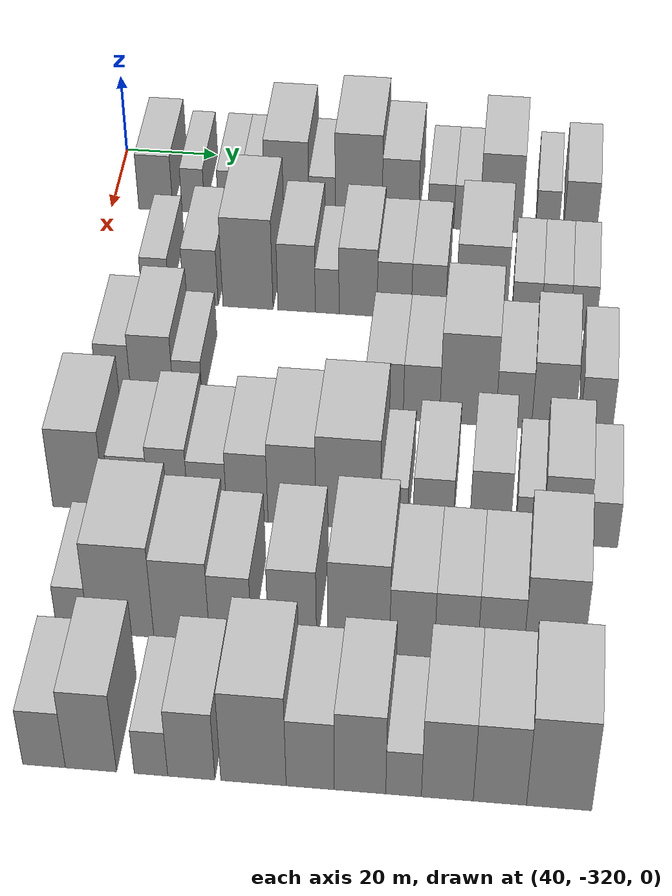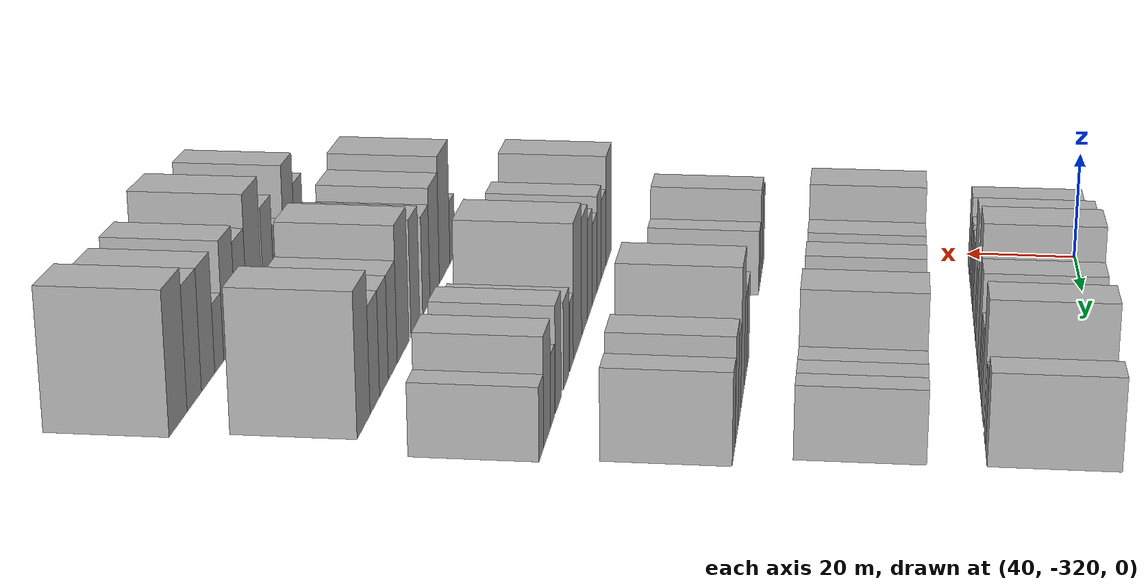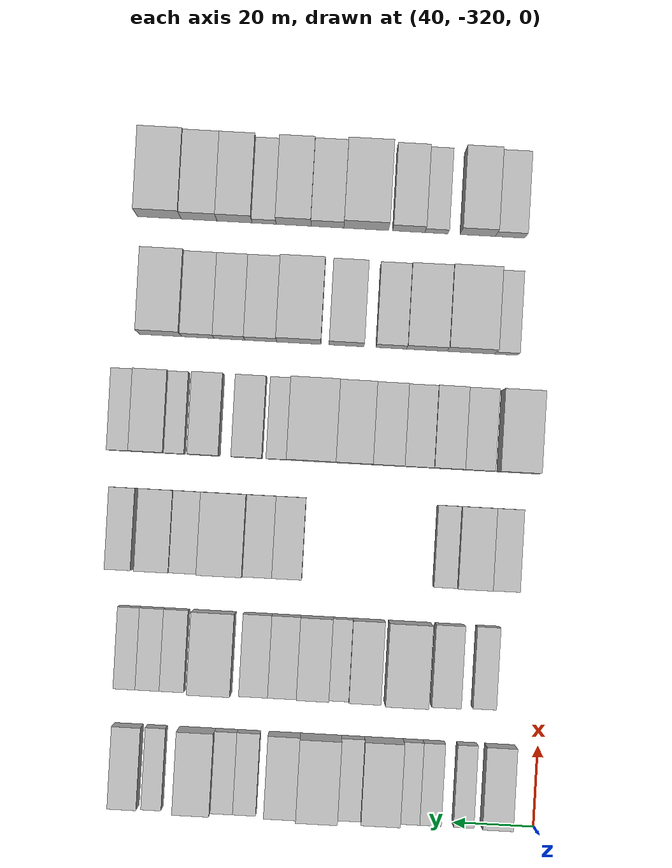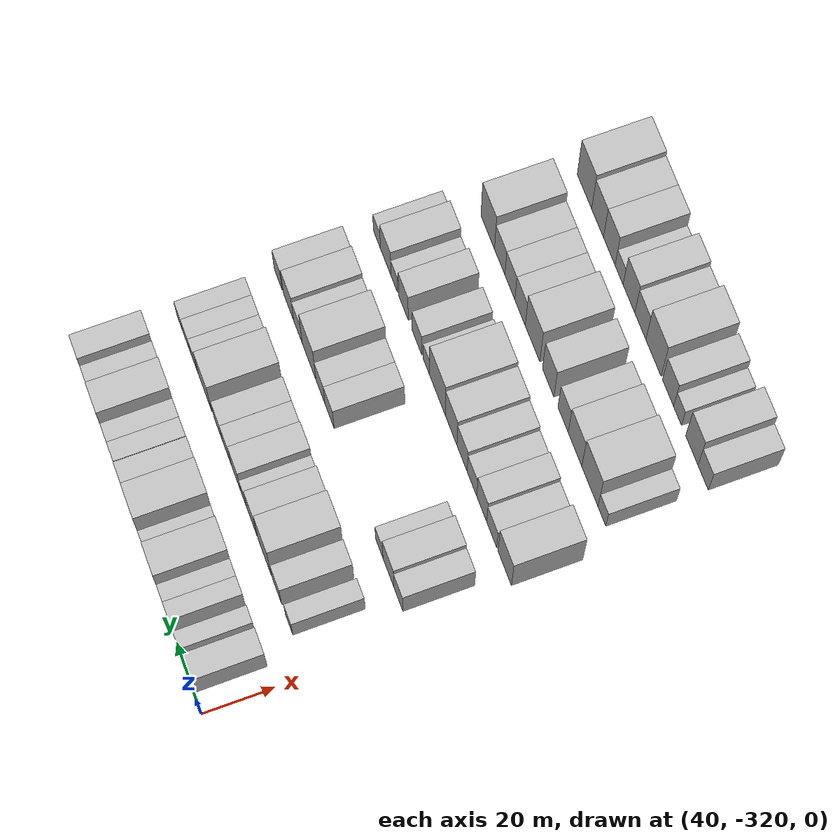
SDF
<sdf version="1.6">
 <world name="default">
  <model name="building_25">
   <static>1</static>
   <pose>50.0000 -310.3500 0 0.000000 0.000000 0.000000</pose>
   <link name="link">
    <pose>0 0 7.50 0 0 0</pose>
    <collision name="collision"><geometry><box><size>20.0000 7.4477 15.0000</size></box></geometry></collision>
    <visual name="visual">
     <cast_shadows>0</cast_shadows>
     <geometry><box><size>20.0000 7.4477 15.0000</size></box></geometry>
     <material>
      <script>
       <uri>model://HANNAS_wall/materials/scripts</uri>
       <uri>model://HANNAS_wall/materials/textures</uri>
       <name>vrc/HANNAS_wall</name>
      </script>
     </material>
    </visual>
   </link>
  </model>
  <model name="building_26">
   <static>1</static>
   <pose>50.0000 -302.1518 0 0.000000 0.000000 0.000000</pose>
   <link name="link">
    <pose>0 0 6.00 0 0 0</pose>
    <collision name="collision"><geometry><box><size>20.0000 4.9486 12.0000</size></box></geometry></collision>
    <visual name="visual">
     <cast_shadows>0</cast_shadows>
     <geometry><box><size>20.0000 4.9486 12.0000</size></box></geometry>
     <material>
      <script>
       <uri>model://HANNAS_wall/materials/scripts</uri>
       <uri>model://HANNAS_wall/materials/textures</uri>
       <name>vrc/HANNAS_wall</name>
      </script>
     </material>
    </visual>
   </link>
  </model>
  <model name="building_27">
   <static>1</static>
   <pose>50.0000 -294.0552 0 0.000000 0.000000 0.000000</pose>
   <link name="link">
    <pose>0 0 6.00 0 0 0</pose>
    <collision name="collision"><geometry><box><size>20.0000 5.2446 12.0000</size></box></geometry></collision>
    <visual name="visual">
     <cast_shadows>0</cast_shadows>
     <geometry><box><size>20.0000 5.2446 12.0000</size></box></geometry>
     <material>
      <script>
       <uri>model://HANNAS_wall/materials/scripts</uri>
       <uri>model://HANNAS_wall/materials/textures</uri>
       <name>vrc/HANNAS_wall</name>
      </script>
     </material>
    </visual>
   </link>
  </model>
  <model name="building_28">
   <static>1</static>
   <pose>50.0000 -288.9779 0 0.000000 0.000000 0.000000</pose>
   <link name="link">
    <pose>0 0 6.00 0 0 0</pose>
    <collision name="collision"><geometry><box><size>20.0000 4.9102 12.0000</size></box></geometry></collision>
    <visual name="visual">
     <cast_shadows>0</cast_shadows>
     <geometry><box><size>20.0000 4.9102 12.0000</size></box></geometry>
     <material>
      <script>
       <uri>model://HANNAS_wall/materials/scripts</uri>
       <uri>model://HANNAS_wall/materials/textures</uri>
       <name>vrc/HANNAS_wall</name>
      </script>
     </material>
    </visual>
   </link>
  </model>
  <model name="building_29">
   <static>1</static>
   <pose>50.0000 -281.7681 0 0.000000 0.000000 0.000000</pose>
   <link name="link">
    <pose>0 0 10.50 0 0 0</pose>
    <collision name="collision"><geometry><box><size>20.0000 9.5093 21.0000</size></box></geometry></collision>
    <visual name="visual">
     <cast_shadows>0</cast_shadows>
     <geometry><box><size>20.0000 9.5093 21.0000</size></box></geometry>
     <material>
      <script>
       <uri>model://HANNAS_wall/materials/scripts</uri>
       <uri>model://HANNAS_wall/materials/textures</uri>
       <name>vrc/HANNAS_wall</name>
      </script>
     </material>
    </visual>
   </link>
  </model>
  <model name="building_30">
   <static>1</static>
   <pose>50.0000 -274.1757 0 0.000000 0.000000 0.000000</pose>
   <link name="link">
    <pose>0 0 6.00 0 0 0</pose>
    <collision name="collision"><geometry><box><size>20.0000 5.6756 12.0000</size></box></geometry></collision>
    <visual name="visual">
     <cast_shadows>0</cast_shadows>
     <geometry><box><size>20.0000 5.6756 12.0000</size></box></geometry>
     <material>
      <script>
       <uri>model://HANNAS_wall/materials/scripts</uri>
       <uri>model://HANNAS_wall/materials/textures</uri>
       <name>vrc/HANNAS_wall</name>
      </script>
     </material>
    </visual>
   </link>
  </model>
  <model name="building_31">
   <static>1</static>
   <pose>50.0000 -266.2947 0 0.000000 0.000000 0.000000</pose>
   <link name="link">
    <pose>0 0 12.00 0 0 0</pose>
    <collision name="collision"><geometry><box><size>20.0000 10.0864 24.0000</size></box></geometry></collision>
    <visual name="visual">
     <cast_shadows>0</cast_shadows>
     <geometry><box><size>20.0000 10.0864 24.0000</size></box></geometry>
     <material>
      <script>
       <uri>model://HANNAS_wall/materials/scripts</uri>
       <uri>model://HANNAS_wall/materials/textures</uri>
       <name>vrc/HANNAS_wall</name>
      </script>
     </material>
    </visual>
   </link>
  </model>
  <model name="building_32">
   <static>1</static>
   <pose>50.0000 -257.3441 0 0.000000 0.000000 0.000000</pose>
   <link name="link">
    <pose>0 0 9.00 0 0 0</pose>
    <collision name="collision"><geometry><box><size>20.0000 7.8147 18.0000</size></box></geometry></collision>
    <visual name="visual">
     <cast_shadows>0</cast_shadows>
     <geometry><box><size>20.0000 7.8147 18.0000</size></box></geometry>
     <material>
      <script>
       <uri>model://HANNAS_wall/materials/scripts</uri>
       <uri>model://HANNAS_wall/materials/textures</uri>
       <name>vrc/HANNAS_wall</name>
      </script>
     </material>
    </visual>
   </link>
  </model>
  <model name="building_33">
   <static>1</static>
   <pose>50.0000 -248.6190 0 0.000000 0.000000 0.000000</pose>
   <link name="link">
    <pose>0 0 6.00 0 0 0</pose>
    <collision name="collision"><geometry><box><size>20.0000 5.6355 12.0000</size></box></geometry></collision>
    <visual name="visual">
     <cast_shadows>0</cast_shadows>
     <geometry><box><size>20.0000 5.6355 12.0000</size></box></geometry>
     <material>
      <script>
       <uri>model://HANNAS_wall/materials/scripts</uri>
       <uri>model://HANNAS_wall/materials/textures</uri>
       <name>vrc/HANNAS_wall</name>
      </script>
     </material>
    </visual>
   </link>
  </model>
  <model name="building_34">
   <static>1</static>
   <pose>50.0000 -243.0802 0 0.000000 0.000000 0.000000</pose>
   <link name="link">
    <pose>0 0 6.00 0 0 0</pose>
    <collision name="collision"><geometry><box><size>20.0000 5.4421 12.0000</size></box></geometry></collision>
    <visual name="visual">
     <cast_shadows>0</cast_shadows>
     <geometry><box><size>20.0000 5.4421 12.0000</size></box></geometry>
     <material>
      <script>
       <uri>model://HANNAS_wall/materials/scripts</uri>
       <uri>model://HANNAS_wall/materials/textures</uri>
       <name>vrc/HANNAS_wall</name>
      </script>
     </material>
    </visual>
   </link>
  </model>
  <model name="building_35">
   <static>1</static>
   <pose>50.0000 -235.8741 0 0.000000 0.000000 0.000000</pose>
   <link name="link">
    <pose>0 0 10.50 0 0 0</pose>
    <collision name="collision"><geometry><box><size>20.0000 8.9701 21.0000</size></box></geometry></collision>
    <visual name="visual">
     <cast_shadows>0</cast_shadows>
     <geometry><box><size>20.0000 8.9701 21.0000</size></box></geometry>
     <material>
      <script>
       <uri>model://HANNAS_wall/materials/scripts</uri>
       <uri>model://HANNAS_wall/materials/textures</uri>
       <name>vrc/HANNAS_wall</name>
      </script>
     </material>
    </visual>
   </link>
  </model>
  <model name="building_36">
   <static>1</static>
   <pose>50.0000 -225.9190 0 0.000000 0.000000 0.000000</pose>
   <link name="link">
    <pose>0 0 6.00 0 0 0</pose>
    <collision name="collision"><geometry><box><size>20.0000 4.9401 12.0000</size></box></geometry></collision>
    <visual name="visual">
     <cast_shadows>0</cast_shadows>
     <geometry><box><size>20.0000 4.9401 12.0000</size></box></geometry>
     <material>
      <script>
       <uri>model://HANNAS_wall/materials/scripts</uri>
       <uri>model://HANNAS_wall/materials/textures</uri>
       <name>vrc/HANNAS_wall</name>
      </script>
     </material>
    </visual>
   </link>
  </model>
  <model name="building_37">
   <static>1</static>
   <pose>50.0000 -218.9250 0 0.000000 0.000000 0.000000</pose>
   <link name="link">
    <pose>0 0 7.50 0 0 0</pose>
    <collision name="collision"><geometry><box><size>20.0000 7.0478 15.0000</size></box></geometry></collision>
    <visual name="visual">
     <cast_shadows>0</cast_shadows>
     <geometry><box><size>20.0000 7.0478 15.0000</size></box></geometry>
     <material>
      <script>
       <uri>model://HANNAS_wall/materials/scripts</uri>
       <uri>model://HANNAS_wall/materials/textures</uri>
       <name>vrc/HANNAS_wall</name>
      </script>
     </material>
    </visual>
   </link>
  </model>
  <model name="building_130">
   <static>1</static>
   <pose>79.0000 -305.6830 0 0.000000 0.000000 0.000000</pose>
   <link name="link">
    <pose>0 0 6.00 0 0 0</pose>
    <collision name="collision"><geometry><box><size>20.0000 5.7050 12.0000</size></box></geometry></collision>
    <visual name="visual">
     <cast_shadows>0</cast_shadows>
     <geometry><box><size>20.0000 5.7050 12.0000</size></box></geometry>
     <material>
      <script>
       <uri>model://HANNAS_wall/materials/scripts</uri>
       <uri>model://HANNAS_wall/materials/textures</uri>
       <name>vrc/HANNAS_wall</name>
      </script>
     </material>
    </visual>
   </link>
  </model>
  <model name="building_131">
   <static>1</static>
   <pose>79.0000 -296.2582 0 0.000000 0.000000 0.000000</pose>
   <link name="link">
    <pose>0 0 7.50 0 0 0</pose>
    <collision name="collision"><geometry><box><size>20.0000 7.1446 15.0000</size></box></geometry></collision>
    <visual name="visual">
     <cast_shadows>0</cast_shadows>
     <geometry><box><size>20.0000 7.1446 15.0000</size></box></geometry>
     <material>
      <script>
       <uri>model://HANNAS_wall/materials/scripts</uri>
       <uri>model://HANNAS_wall/materials/textures</uri>
       <name>vrc/HANNAS_wall</name>
      </script>
     </material>
    </visual>
   </link>
  </model>
  <model name="building_132">
   <static>1</static>
   <pose>79.0000 -286.4855 0 0.000000 0.000000 0.000000</pose>
   <link name="link">
    <pose>0 0 12.00 0 0 0</pose>
    <collision name="collision"><geometry><box><size>20.0000 10.4007 24.0000</size></box></geometry></collision>
    <visual name="visual">
     <cast_shadows>0</cast_shadows>
     <geometry><box><size>20.0000 10.4007 24.0000</size></box></geometry>
     <material>
      <script>
       <uri>model://HANNAS_wall/materials/scripts</uri>
       <uri>model://HANNAS_wall/materials/textures</uri>
       <name>vrc/HANNAS_wall</name>
      </script>
     </material>
    </visual>
   </link>
  </model>
  <model name="building_133">
   <static>1</static>
   <pose>79.0000 -276.4132 0 0.000000 0.000000 0.000000</pose>
   <link name="link">
    <pose>0 0 9.00 0 0 0</pose>
    <collision name="collision"><geometry><box><size>20.0000 7.7440 18.0000</size></box></geometry></collision>
    <visual name="visual">
     <cast_shadows>0</cast_shadows>
     <geometry><box><size>20.0000 7.7440 18.0000</size></box></geometry>
     <material>
      <script>
       <uri>model://HANNAS_wall/materials/scripts</uri>
       <uri>model://HANNAS_wall/materials/textures</uri>
       <name>vrc/HANNAS_wall</name>
      </script>
     </material>
    </visual>
   </link>
  </model>
  <model name="building_134">
   <static>1</static>
   <pose>79.0000 -270.0962 0 0.000000 0.000000 0.000000</pose>
   <link name="link">
    <pose>0 0 6.00 0 0 0</pose>
    <collision name="collision"><geometry><box><size>20.0000 4.8899 12.0000</size></box></geometry></collision>
    <visual name="visual">
     <cast_shadows>0</cast_shadows>
     <geometry><box><size>20.0000 4.8899 12.0000</size></box></geometry>
     <material>
      <script>
       <uri>model://HANNAS_wall/materials/scripts</uri>
       <uri>model://HANNAS_wall/materials/textures</uri>
       <name>vrc/HANNAS_wall</name>
      </script>
     </material>
    </visual>
   </link>
  </model>
  <model name="building_135">
   <static>1</static>
   <pose>79.0000 -263.7122 0 0.000000 0.000000 0.000000</pose>
   <link name="link">
    <pose>0 0 9.00 0 0 0</pose>
    <collision name="collision"><geometry><box><size>20.0000 7.8782 18.0000</size></box></geometry></collision>
    <visual name="visual">
     <cast_shadows>0</cast_shadows>
     <geometry><box><size>20.0000 7.8782 18.0000</size></box></geometry>
     <material>
      <script>
       <uri>model://HANNAS_wall/materials/scripts</uri>
       <uri>model://HANNAS_wall/materials/textures</uri>
       <name>vrc/HANNAS_wall</name>
      </script>
     </material>
    </visual>
   </link>
  </model>
  <model name="building_136">
   <static>1</static>
   <pose>79.0000 -256.2698 0 0.000000 0.000000 0.000000</pose>
   <link name="link">
    <pose>0 0 7.50 0 0 0</pose>
    <collision name="collision"><geometry><box><size>20.0000 7.0066 15.0000</size></box></geometry></collision>
    <visual name="visual">
     <cast_shadows>0</cast_shadows>
     <geometry><box><size>20.0000 7.0066 15.0000</size></box></geometry>
     <material>
      <script>
       <uri>model://HANNAS_wall/materials/scripts</uri>
       <uri>model://HANNAS_wall/materials/textures</uri>
       <name>vrc/HANNAS_wall</name>
      </script>
     </material>
    </visual>
   </link>
  </model>
  <model name="building_137">
   <static>1</static>
   <pose>79.0000 -249.2563 0 0.000000 0.000000 0.000000</pose>
   <link name="link">
    <pose>0 0 7.50 0 0 0</pose>
    <collision name="collision"><geometry><box><size>20.0000 7.0202 15.0000</size></box></geometry></collision>
    <visual name="visual">
     <cast_shadows>0</cast_shadows>
     <geometry><box><size>20.0000 7.0202 15.0000</size></box></geometry>
     <material>
      <script>
       <uri>model://HANNAS_wall/materials/scripts</uri>
       <uri>model://HANNAS_wall/materials/textures</uri>
       <name>vrc/HANNAS_wall</name>
      </script>
     </material>
    </visual>
   </link>
  </model>
  <model name="building_138">
   <static>1</static>
   <pose>79.0000 -238.5179 0 0.000000 0.000000 0.000000</pose>
   <link name="link">
    <pose>0 0 10.50 0 0 0</pose>
    <collision name="collision"><geometry><box><size>20.0000 10.4567 21.0000</size></box></geometry></collision>
    <visual name="visual">
     <cast_shadows>0</cast_shadows>
     <geometry><box><size>20.0000 10.4567 21.0000</size></box></geometry>
     <material>
      <script>
       <uri>model://HANNAS_wall/materials/scripts</uri>
       <uri>model://HANNAS_wall/materials/textures</uri>
       <name>vrc/HANNAS_wall</name>
      </script>
     </material>
    </visual>
   </link>
  </model>
  <model name="building_139">
   <static>1</static>
   <pose>79.0000 -229.2973 0 0.000000 0.000000 0.000000</pose>
   <link name="link">
    <pose>0 0 6.00 0 0 0</pose>
    <collision name="collision"><geometry><box><size>20.0000 5.9845 12.0000</size></box></geometry></collision>
    <visual name="visual">
     <cast_shadows>0</cast_shadows>
     <geometry><box><size>20.0000 5.9845 12.0000</size></box></geometry>
     <material>
      <script>
       <uri>model://HANNAS_wall/materials/scripts</uri>
       <uri>model://HANNAS_wall/materials/textures</uri>
       <name>vrc/HANNAS_wall</name>
      </script>
     </material>
    </visual>
   </link>
  </model>
  <model name="building_140">
   <static>1</static>
   <pose>79.0000 -223.3684 0 0.000000 0.000000 0.000000</pose>
   <link name="link">
    <pose>0 0 6.00 0 0 0</pose>
    <collision name="collision"><geometry><box><size>20.0000 5.8732 12.0000</size></box></geometry></collision>
    <visual name="visual">
     <cast_shadows>0</cast_shadows>
     <geometry><box><size>20.0000 5.8732 12.0000</size></box></geometry>
     <material>
      <script>
       <uri>model://HANNAS_wall/materials/scripts</uri>
       <uri>model://HANNAS_wall/materials/textures</uri>
       <name>vrc/HANNAS_wall</name>
      </script>
     </material>
    </visual>
   </link>
  </model>
  <model name="building_141">
   <static>1</static>
   <pose>79.0000 -217.7541 0 0.000000 0.000000 0.000000</pose>
   <link name="link">
    <pose>0 0 6.00 0 0 0</pose>
    <collision name="collision"><geometry><box><size>20.0000 5.3555 12.0000</size></box></geometry></collision>
    <visual name="visual">
     <cast_shadows>0</cast_shadows>
     <geometry><box><size>20.0000 5.3555 12.0000</size></box></geometry>
     <material>
      <script>
       <uri>model://HANNAS_wall/materials/scripts</uri>
       <uri>model://HANNAS_wall/materials/textures</uri>
       <name>vrc/HANNAS_wall</name>
      </script>
     </material>
    </visual>
   </link>
  </model>
  <model name="building_245">
   <static>1</static>
   <pose>108.0000 -309.1807 0 0.000000 0.000000 0.000000</pose>
   <link name="link">
    <pose>0 0 7.50 0 0 0</pose>
    <collision name="collision"><geometry><box><size>20.0000 6.7157 15.0000</size></box></geometry></collision>
    <visual name="visual">
     <cast_shadows>0</cast_shadows>
     <geometry><box><size>20.0000 6.7157 15.0000</size></box></geometry>
     <material>
      <script>
       <uri>model://HANNAS_wall/materials/scripts</uri>
       <uri>model://HANNAS_wall/materials/textures</uri>
       <name>vrc/HANNAS_wall</name>
      </script>
     </material>
    </visual>
   </link>
  </model>
  <model name="building_246">
   <static>1</static>
   <pose>108.0000 -301.6084 0 0.000000 0.000000 0.000000</pose>
   <link name="link">
    <pose>0 0 9.00 0 0 0</pose>
    <collision name="collision"><geometry><box><size>20.0000 8.4289 18.0000</size></box></geometry></collision>
    <visual name="visual">
     <cast_shadows>0</cast_shadows>
     <geometry><box><size>20.0000 8.4289 18.0000</size></box></geometry>
     <material>
      <script>
       <uri>model://HANNAS_wall/materials/scripts</uri>
       <uri>model://HANNAS_wall/materials/textures</uri>
       <name>vrc/HANNAS_wall</name>
      </script>
     </material>
    </visual>
   </link>
  </model>
  <model name="building_247">
   <static>1</static>
   <pose>108.0000 -294.5485 0 0.000000 0.000000 0.000000</pose>
   <link name="link">
    <pose>0 0 6.00 0 0 0</pose>
    <collision name="collision"><geometry><box><size>20.0000 5.6909 12.0000</size></box></geometry></collision>
    <visual name="visual">
     <cast_shadows>0</cast_shadows>
     <geometry><box><size>20.0000 5.6909 12.0000</size></box></geometry>
     <material>
      <script>
       <uri>model://HANNAS_wall/materials/scripts</uri>
       <uri>model://HANNAS_wall/materials/textures</uri>
       <name>vrc/HANNAS_wall</name>
      </script>
     </material>
    </visual>
   </link>
  </model>
  <model name="building_248">
   <static>1</static>
   <pose>108.0000 -255.7899 0 0.000000 0.000000 0.000000</pose>
   <link name="link">
    <pose>0 0 7.50 0 0 0</pose>
    <collision name="collision"><geometry><box><size>20.0000 7.2754 15.0000</size></box></geometry></collision>
    <visual name="visual">
     <cast_shadows>0</cast_shadows>
     <geometry><box><size>20.0000 7.2754 15.0000</size></box></geometry>
     <material>
      <script>
       <uri>model://HANNAS_wall/materials/scripts</uri>
       <uri>model://HANNAS_wall/materials/textures</uri>
       <name>vrc/HANNAS_wall</name>
      </script>
     </material>
    </visual>
   </link>
  </model>
  <model name="building_249">
   <static>1</static>
   <pose>108.0000 -248.5992 0 0.000000 0.000000 0.000000</pose>
   <link name="link">
    <pose>0 0 7.50 0 0 0</pose>
    <collision name="collision"><geometry><box><size>20.0000 7.1059 15.0000</size></box></geometry></collision>
    <visual name="visual">
     <cast_shadows>0</cast_shadows>
     <geometry><box><size>20.0000 7.1059 15.0000</size></box></geometry>
     <material>
      <script>
       <uri>model://HANNAS_wall/materials/scripts</uri>
       <uri>model://HANNAS_wall/materials/textures</uri>
       <name>vrc/HANNAS_wall</name>
      </script>
     </material>
    </visual>
   </link>
  </model>
  <model name="building_250">
   <static>1</static>
   <pose>108.0000 -239.5821 0 0.000000 0.000000 0.000000</pose>
   <link name="link">
    <pose>0 0 12.00 0 0 0</pose>
    <collision name="collision"><geometry><box><size>20.0000 10.9283 24.0000</size></box></geometry></collision>
    <visual name="visual">
     <cast_shadows>0</cast_shadows>
     <geometry><box><size>20.0000 10.9283 24.0000</size></box></geometry>
     <material>
      <script>
       <uri>model://HANNAS_wall/materials/scripts</uri>
       <uri>model://HANNAS_wall/materials/textures</uri>
       <name>vrc/HANNAS_wall</name>
      </script>
     </material>
    </visual>
   </link>
  </model>
  <model name="building_251">
   <static>1</static>
   <pose>108.0000 -230.6296 0 0.000000 0.000000 0.000000</pose>
   <link name="link">
    <pose>0 0 7.50 0 0 0</pose>
    <collision name="collision"><geometry><box><size>20.0000 6.9767 15.0000</size></box></geometry></collision>
    <visual name="visual">
     <cast_shadows>0</cast_shadows>
     <geometry><box><size>20.0000 6.9767 15.0000</size></box></geometry>
     <material>
      <script>
       <uri>model://HANNAS_wall/materials/scripts</uri>
       <uri>model://HANNAS_wall/materials/textures</uri>
       <name>vrc/HANNAS_wall</name>
      </script>
     </material>
    </visual>
   </link>
  </model>
  <model name="building_252">
   <static>1</static>
   <pose>108.0000 -222.9839 0 0.000000 0.000000 0.000000</pose>
   <link name="link">
    <pose>0 0 9.00 0 0 0</pose>
    <collision name="collision"><geometry><box><size>20.0000 8.3147 18.0000</size></box></geometry></collision>
    <visual name="visual">
     <cast_shadows>0</cast_shadows>
     <geometry><box><size>20.0000 8.3147 18.0000</size></box></geometry>
     <material>
      <script>
       <uri>model://HANNAS_wall/materials/scripts</uri>
       <uri>model://HANNAS_wall/materials/textures</uri>
       <name>vrc/HANNAS_wall</name>
      </script>
     </material>
    </visual>
   </link>
  </model>
  <model name="building_253">
   <static>1</static>
   <pose>108.0000 -214.6634 0 0.000000 0.000000 0.000000</pose>
   <link name="link">
    <pose>0 0 7.50 0 0 0</pose>
    <collision name="collision"><geometry><box><size>20.0000 6.3262 15.0000</size></box></geometry></collision>
    <visual name="visual">
     <cast_shadows>0</cast_shadows>
     <geometry><box><size>20.0000 6.3262 15.0000</size></box></geometry>
     <material>
      <script>
       <uri>model://HANNAS_wall/materials/scripts</uri>
       <uri>model://HANNAS_wall/materials/textures</uri>
       <name>vrc/HANNAS_wall</name>
      </script>
     </material>
    </visual>
   </link>
  </model>
  <model name="building_357">
   <static>1</static>
   <pose>137.0000 -310.9239 0 0.000000 0.000000 0.000000</pose>
   <link name="link">
    <pose>0 0 10.50 0 0 0</pose>
    <collision name="collision"><geometry><box><size>20.0000 9.9077 21.0000</size></box></geometry></collision>
    <visual name="visual">
     <cast_shadows>0</cast_shadows>
     <geometry><box><size>20.0000 9.9077 21.0000</size></box></geometry>
     <material>
      <script>
       <uri>model://HANNAS_wall/materials/scripts</uri>
       <uri>model://HANNAS_wall/materials/textures</uri>
       <name>vrc/HANNAS_wall</name>
      </script>
     </material>
    </visual>
   </link>
  </model>
  <model name="building_358">
   <static>1</static>
   <pose>137.0000 -301.2529 0 0.000000 0.000000 0.000000</pose>
   <link name="link">
    <pose>0 0 7.50 0 0 0</pose>
    <collision name="collision"><geometry><box><size>20.0000 7.4344 15.0000</size></box></geometry></collision>
    <visual name="visual">
     <cast_shadows>0</cast_shadows>
     <geometry><box><size>20.0000 7.4344 15.0000</size></box></geometry>
     <material>
      <script>
       <uri>model://HANNAS_wall/materials/scripts</uri>
       <uri>model://HANNAS_wall/materials/textures</uri>
       <name>vrc/HANNAS_wall</name>
      </script>
     </material>
    </visual>
   </link>
  </model>
  <model name="building_359">
   <static>1</static>
   <pose>137.0000 -293.8175 0 0.000000 0.000000 0.000000</pose>
   <link name="link">
    <pose>0 0 9.00 0 0 0</pose>
    <collision name="collision"><geometry><box><size>20.0000 7.4363 18.0000</size></box></geometry></collision>
    <visual name="visual">
     <cast_shadows>0</cast_shadows>
     <geometry><box><size>20.0000 7.4363 18.0000</size></box></geometry>
     <material>
      <script>
       <uri>model://HANNAS_wall/materials/scripts</uri>
       <uri>model://HANNAS_wall/materials/textures</uri>
       <name>vrc/HANNAS_wall</name>
      </script>
     </material>
    </visual>
   </link>
  </model>
  <model name="building_360">
   <static>1</static>
   <pose>137.0000 -286.4863 0 0.000000 0.000000 0.000000</pose>
   <link name="link">
    <pose>0 0 7.50 0 0 0</pose>
    <collision name="collision"><geometry><box><size>20.0000 7.2260 15.0000</size></box></geometry></collision>
    <visual name="visual">
     <cast_shadows>0</cast_shadows>
     <geometry><box><size>20.0000 7.2260 15.0000</size></box></geometry>
     <material>
      <script>
       <uri>model://HANNAS_wall/materials/scripts</uri>
       <uri>model://HANNAS_wall/materials/textures</uri>
       <name>vrc/HANNAS_wall</name>
      </script>
     </material>
    </visual>
   </link>
  </model>
  <model name="building_361">
   <static>1</static>
   <pose>137.0000 -279.0124 0 0.000000 0.000000 0.000000</pose>
   <link name="link">
    <pose>0 0 9.00 0 0 0</pose>
    <collision name="collision"><geometry><box><size>20.0000 7.7218 18.0000</size></box></geometry></collision>
    <visual name="visual">
     <cast_shadows>0</cast_shadows>
     <geometry><box><size>20.0000 7.7218 18.0000</size></box></geometry>
     <material>
      <script>
       <uri>model://HANNAS_wall/materials/scripts</uri>
       <uri>model://HANNAS_wall/materials/textures</uri>
       <name>vrc/HANNAS_wall</name>
      </script>
     </material>
    </visual>
   </link>
  </model>
  <model name="building_362">
   <static>1</static>
   <pose>137.0000 -270.6608 0 0.000000 0.000000 0.000000</pose>
   <link name="link">
    <pose>0 0 10.50 0 0 0</pose>
    <collision name="collision"><geometry><box><size>20.0000 8.9815 21.0000</size></box></geometry></collision>
    <visual name="visual">
     <cast_shadows>0</cast_shadows>
     <geometry><box><size>20.0000 8.9815 21.0000</size></box></geometry>
     <material>
      <script>
       <uri>model://HANNAS_wall/materials/scripts</uri>
       <uri>model://HANNAS_wall/materials/textures</uri>
       <name>vrc/HANNAS_wall</name>
      </script>
     </material>
    </visual>
   </link>
  </model>
  <model name="building_363">
   <static>1</static>
   <pose>137.0000 -260.1833 0 0.000000 0.000000 0.000000</pose>
   <link name="link">
    <pose>0 0 12.00 0 0 0</pose>
    <collision name="collision"><geometry><box><size>20.0000 11.9734 24.0000</size></box></geometry></collision>
    <visual name="visual">
     <cast_shadows>0</cast_shadows>
     <geometry><box><size>20.0000 11.9734 24.0000</size></box></geometry>
     <material>
      <script>
       <uri>model://HANNAS_wall/materials/scripts</uri>
       <uri>model://HANNAS_wall/materials/textures</uri>
       <name>vrc/HANNAS_wall</name>
      </script>
     </material>
    </visual>
   </link>
  </model>
  <model name="building_364">
   <static>1</static>
   <pose>137.0000 -251.6567 0 0.000000 0.000000 0.000000</pose>
   <link name="link">
    <pose>0 0 6.00 0 0 0</pose>
    <collision name="collision"><geometry><box><size>20.0000 5.0798 12.0000</size></box></geometry></collision>
    <visual name="visual">
     <cast_shadows>0</cast_shadows>
     <geometry><box><size>20.0000 5.0798 12.0000</size></box></geometry>
     <material>
      <script>
       <uri>model://HANNAS_wall/materials/scripts</uri>
       <uri>model://HANNAS_wall/materials/textures</uri>
       <name>vrc/HANNAS_wall</name>
      </script>
     </material>
    </visual>
   </link>
  </model>
  <model name="building_365">
   <static>1</static>
   <pose>137.0000 -244.3751 0 0.000000 0.000000 0.000000</pose>
   <link name="link">
    <pose>0 0 7.50 0 0 0</pose>
    <collision name="collision"><geometry><box><size>20.0000 7.4836 15.0000</size></box></geometry></collision>
    <visual name="visual">
     <cast_shadows>0</cast_shadows>
     <geometry><box><size>20.0000 7.4836 15.0000</size></box></geometry>
     <material>
      <script>
       <uri>model://HANNAS_wall/materials/scripts</uri>
       <uri>model://HANNAS_wall/materials/textures</uri>
       <name>vrc/HANNAS_wall</name>
      </script>
     </material>
    </visual>
   </link>
  </model>
  <model name="building_366">
   <static>1</static>
   <pose>137.0000 -233.8746 0 0.000000 0.000000 0.000000</pose>
   <link name="link">
    <pose>0 0 9.00 0 0 0</pose>
    <collision name="collision"><geometry><box><size>20.0000 7.5173 18.0000</size></box></geometry></collision>
    <visual name="visual">
     <cast_shadows>0</cast_shadows>
     <geometry><box><size>20.0000 7.5173 18.0000</size></box></geometry>
     <material>
      <script>
       <uri>model://HANNAS_wall/materials/scripts</uri>
       <uri>model://HANNAS_wall/materials/textures</uri>
       <name>vrc/HANNAS_wall</name>
      </script>
     </material>
    </visual>
   </link>
  </model>
  <model name="building_367">
   <static>1</static>
   <pose>137.0000 -226.6437 0 0.000000 0.000000 0.000000</pose>
   <link name="link">
    <pose>0 0 6.00 0 0 0</pose>
    <collision name="collision"><geometry><box><size>20.0000 4.9445 12.0000</size></box></geometry></collision>
    <visual name="visual">
     <cast_shadows>0</cast_shadows>
     <geometry><box><size>20.0000 4.9445 12.0000</size></box></geometry>
     <material>
      <script>
       <uri>model://HANNAS_wall/materials/scripts</uri>
       <uri>model://HANNAS_wall/materials/textures</uri>
       <name>vrc/HANNAS_wall</name>
      </script>
     </material>
    </visual>
   </link>
  </model>
  <model name="building_368">
   <static>1</static>
   <pose>137.0000 -219.9780 0 0.000000 0.000000 0.000000</pose>
   <link name="link">
    <pose>0 0 9.00 0 0 0</pose>
    <collision name="collision"><geometry><box><size>20.0000 8.3870 18.0000</size></box></geometry></collision>
    <visual name="visual">
     <cast_shadows>0</cast_shadows>
     <geometry><box><size>20.0000 8.3870 18.0000</size></box></geometry>
     <material>
      <script>
       <uri>model://HANNAS_wall/materials/scripts</uri>
       <uri>model://HANNAS_wall/materials/textures</uri>
       <name>vrc/HANNAS_wall</name>
      </script>
     </material>
    </visual>
   </link>
  </model>
  <model name="building_369">
   <static>1</static>
   <pose>137.0000 -212.9882 0 0.000000 0.000000 0.000000</pose>
   <link name="link">
    <pose>0 0 6.00 0 0 0</pose>
    <collision name="collision"><geometry><box><size>20.0000 5.5925 12.0000</size></box></geometry></collision>
    <visual name="visual">
     <cast_shadows>0</cast_shadows>
     <geometry><box><size>20.0000 5.5925 12.0000</size></box></geometry>
     <material>
      <script>
       <uri>model://HANNAS_wall/materials/scripts</uri>
       <uri>model://HANNAS_wall/materials/textures</uri>
       <name>vrc/HANNAS_wall</name>
      </script>
     </material>
    </visual>
   </link>
  </model>
  <model name="building_471">
   <static>1</static>
   <pose>166.0000 -306.6271 0 0.000000 0.000000 0.000000</pose>
   <link name="link">
    <pose>0 0 6.00 0 0 0</pose>
    <collision name="collision"><geometry><box><size>20.0000 5.7375 12.0000</size></box></geometry></collision>
    <visual name="visual">
     <cast_shadows>0</cast_shadows>
     <geometry><box><size>20.0000 5.7375 12.0000</size></box></geometry>
     <material>
      <script>
       <uri>model://HANNAS_wall/materials/scripts</uri>
       <uri>model://HANNAS_wall/materials/textures</uri>
       <name>vrc/HANNAS_wall</name>
      </script>
     </material>
    </visual>
   </link>
  </model>
  <model name="building_472">
   <static>1</static>
   <pose>166.0000 -297.8793 0 0.000000 0.000000 0.000000</pose>
   <link name="link">
    <pose>0 0 12.00 0 0 0</pose>
    <collision name="collision"><geometry><box><size>20.0000 11.7582 24.0000</size></box></geometry></collision>
    <visual name="visual">
     <cast_shadows>0</cast_shadows>
     <geometry><box><size>20.0000 11.7582 24.0000</size></box></geometry>
     <material>
      <script>
       <uri>model://HANNAS_wall/materials/scripts</uri>
       <uri>model://HANNAS_wall/materials/textures</uri>
       <name>vrc/HANNAS_wall</name>
      </script>
     </material>
    </visual>
   </link>
  </model>
  <model name="building_473">
   <static>1</static>
   <pose>166.0000 -287.0018 0 0.000000 0.000000 0.000000</pose>
   <link name="link">
    <pose>0 0 10.50 0 0 0</pose>
    <collision name="collision"><geometry><box><size>20.0000 9.9968 21.0000</size></box></geometry></collision>
    <visual name="visual">
     <cast_shadows>0</cast_shadows>
     <geometry><box><size>20.0000 9.9968 21.0000</size></box></geometry>
     <material>
      <script>
       <uri>model://HANNAS_wall/materials/scripts</uri>
       <uri>model://HANNAS_wall/materials/textures</uri>
       <name>vrc/HANNAS_wall</name>
      </script>
     </material>
    </visual>
   </link>
  </model>
  <model name="building_474">
   <static>1</static>
   <pose>166.0000 -278.2367 0 0.000000 0.000000 0.000000</pose>
   <link name="link">
    <pose>0 0 9.00 0 0 0</pose>
    <collision name="collision"><geometry><box><size>20.0000 7.5333 18.0000</size></box></geometry></collision>
    <visual name="visual">
     <cast_shadows>0</cast_shadows>
     <geometry><box><size>20.0000 7.5333 18.0000</size></box></geometry>
     <material>
      <script>
       <uri>model://HANNAS_wall/materials/scripts</uri>
       <uri>model://HANNAS_wall/materials/textures</uri>
       <name>vrc/HANNAS_wall</name>
      </script>
     </material>
    </visual>
   </link>
  </model>
  <model name="building_475">
   <static>1</static>
   <pose>166.0000 -267.1965 0 0.000000 0.000000 0.000000</pose>
   <link name="link">
    <pose>0 0 10.50 0 0 0</pose>
    <collision name="collision"><geometry><box><size>20.0000 8.5473 21.0000</size></box></geometry></collision>
    <visual name="visual">
     <cast_shadows>0</cast_shadows>
     <geometry><box><size>20.0000 8.5473 21.0000</size></box></geometry>
     <material>
      <script>
       <uri>model://HANNAS_wall/materials/scripts</uri>
       <uri>model://HANNAS_wall/materials/textures</uri>
       <name>vrc/HANNAS_wall</name>
      </script>
     </material>
    </visual>
   </link>
  </model>
  <model name="building_476">
   <static>1</static>
   <pose>166.0000 -255.4695 0 0.000000 0.000000 0.000000</pose>
   <link name="link">
    <pose>0 0 12.00 0 0 0</pose>
    <collision name="collision"><geometry><box><size>20.0000 10.9067 24.0000</size></box></geometry></collision>
    <visual name="visual">
     <cast_shadows>0</cast_shadows>
     <geometry><box><size>20.0000 10.9067 24.0000</size></box></geometry>
     <material>
      <script>
       <uri>model://HANNAS_wall/materials/scripts</uri>
       <uri>model://HANNAS_wall/materials/textures</uri>
       <name>vrc/HANNAS_wall</name>
      </script>
     </material>
    </visual>
   </link>
  </model>
  <model name="building_477">
   <static>1</static>
   <pose>166.0000 -246.0702 0 0.000000 0.000000 0.000000</pose>
   <link name="link">
    <pose>0 0 9.00 0 0 0</pose>
    <collision name="collision"><geometry><box><size>20.0000 7.8919 18.0000</size></box></geometry></collision>
    <visual name="visual">
     <cast_shadows>0</cast_shadows>
     <geometry><box><size>20.0000 7.8919 18.0000</size></box></geometry>
     <material>
      <script>
       <uri>model://HANNAS_wall/materials/scripts</uri>
       <uri>model://HANNAS_wall/materials/textures</uri>
       <name>vrc/HANNAS_wall</name>
      </script>
     </material>
    </visual>
   </link>
  </model>
  <model name="building_478">
   <static>1</static>
   <pose>166.0000 -238.3536 0 0.000000 0.000000 0.000000</pose>
   <link name="link">
    <pose>0 0 9.00 0 0 0</pose>
    <collision name="collision"><geometry><box><size>20.0000 7.5413 18.0000</size></box></geometry></collision>
    <visual name="visual">
     <cast_shadows>0</cast_shadows>
     <geometry><box><size>20.0000 7.5413 18.0000</size></box></geometry>
     <material>
      <script>
       <uri>model://HANNAS_wall/materials/scripts</uri>
       <uri>model://HANNAS_wall/materials/textures</uri>
       <name>vrc/HANNAS_wall</name>
      </script>
     </material>
    </visual>
   </link>
  </model>
  <model name="building_479">
   <static>1</static>
   <pose>166.0000 -230.5910 0 0.000000 0.000000 0.000000</pose>
   <link name="link">
    <pose>0 0 9.00 0 0 0</pose>
    <collision name="collision"><geometry><box><size>20.0000 7.9839 18.0000</size></box></geometry></collision>
    <visual name="visual">
     <cast_shadows>0</cast_shadows>
     <geometry><box><size>20.0000 7.9839 18.0000</size></box></geometry>
     <material>
      <script>
       <uri>model://HANNAS_wall/materials/scripts</uri>
       <uri>model://HANNAS_wall/materials/textures</uri>
       <name>vrc/HANNAS_wall</name>
      </script>
     </material>
    </visual>
   </link>
  </model>
  <model name="building_480">
   <static>1</static>
   <pose>166.0000 -221.4005 0 0.000000 0.000000 0.000000</pose>
   <link name="link">
    <pose>0 0 12.00 0 0 0</pose>
    <collision name="collision"><geometry><box><size>20.0000 10.3971 24.0000</size></box></geometry></collision>
    <visual name="visual">
     <cast_shadows>0</cast_shadows>
     <geometry><box><size>20.0000 10.3971 24.0000</size></box></geometry>
     <material>
      <script>
       <uri>model://HANNAS_wall/materials/scripts</uri>
       <uri>model://HANNAS_wall/materials/textures</uri>
       <name>vrc/HANNAS_wall</name>
      </script>
     </material>
    </visual>
   </link>
  </model>
  <model name="building_582">
   <static>1</static>
   <pose>195.0000 -306.0343 0 0.000000 0.000000 0.000000</pose>
   <link name="link">
    <pose>0 0 7.50 0 0 0</pose>
    <collision name="collision"><geometry><box><size>20.0000 7.2914 15.0000</size></box></geometry></collision>
    <visual name="visual">
     <cast_shadows>0</cast_shadows>
     <geometry><box><size>20.0000 7.2914 15.0000</size></box></geometry>
     <material>
      <script>
       <uri>model://HANNAS_wall/materials/scripts</uri>
       <uri>model://HANNAS_wall/materials/textures</uri>
       <name>vrc/HANNAS_wall</name>
      </script>
     </material>
    </visual>
   </link>
  </model>
  <model name="building_583">
   <static>1</static>
   <pose>195.0000 -298.0242 0 0.000000 0.000000 0.000000</pose>
   <link name="link">
    <pose>0 0 10.50 0 0 0</pose>
    <collision name="collision"><geometry><box><size>20.0000 8.7288 21.0000</size></box></geometry></collision>
    <visual name="visual">
     <cast_shadows>0</cast_shadows>
     <geometry><box><size>20.0000 8.7288 21.0000</size></box></geometry>
     <material>
      <script>
       <uri>model://HANNAS_wall/materials/scripts</uri>
       <uri>model://HANNAS_wall/materials/textures</uri>
       <name>vrc/HANNAS_wall</name>
      </script>
     </material>
    </visual>
   </link>
  </model>
  <model name="building_584">
   <static>1</static>
   <pose>195.0000 -287.8113 0 0.000000 0.000000 0.000000</pose>
   <link name="link">
    <pose>0 0 6.00 0 0 0</pose>
    <collision name="collision"><geometry><box><size>20.0000 5.6970 12.0000</size></box></geometry></collision>
    <visual name="visual">
     <cast_shadows>0</cast_shadows>
     <geometry><box><size>20.0000 5.6970 12.0000</size></box></geometry>
     <material>
      <script>
       <uri>model://HANNAS_wall/materials/scripts</uri>
       <uri>model://HANNAS_wall/materials/textures</uri>
       <name>vrc/HANNAS_wall</name>
      </script>
     </material>
    </visual>
   </link>
  </model>
  <model name="building_585">
   <static>1</static>
   <pose>195.0000 -280.9683 0 0.000000 0.000000 0.000000</pose>
   <link name="link">
    <pose>0 0 9.00 0 0 0</pose>
    <collision name="collision"><geometry><box><size>20.0000 7.9890 18.0000</size></box></geometry></collision>
    <visual name="visual">
     <cast_shadows>0</cast_shadows>
     <geometry><box><size>20.0000 7.9890 18.0000</size></box></geometry>
     <material>
      <script>
       <uri>model://HANNAS_wall/materials/scripts</uri>
       <uri>model://HANNAS_wall/materials/textures</uri>
       <name>vrc/HANNAS_wall</name>
      </script>
     </material>
    </visual>
   </link>
  </model>
  <model name="building_586">
   <static>1</static>
   <pose>195.0000 -270.4631 0 0.000000 0.000000 0.000000</pose>
   <link name="link">
    <pose>0 0 12.00 0 0 0</pose>
    <collision name="collision"><geometry><box><size>20.0000 11.0215 24.0000</size></box></geometry></collision>
    <visual name="visual">
     <cast_shadows>0</cast_shadows>
     <geometry><box><size>20.0000 11.0215 24.0000</size></box></geometry>
     <material>
      <script>
       <uri>model://HANNAS_wall/materials/scripts</uri>
       <uri>model://HANNAS_wall/materials/textures</uri>
       <name>vrc/HANNAS_wall</name>
      </script>
     </material>
    </visual>
   </link>
  </model>
  <model name="building_587">
   <static>1</static>
   <pose>195.0000 -260.9033 0 0.000000 0.000000 0.000000</pose>
   <link name="link">
    <pose>0 0 9.00 0 0 0</pose>
    <collision name="collision"><geometry><box><size>20.0000 8.0980 18.0000</size></box></geometry></collision>
    <visual name="visual">
     <cast_shadows>0</cast_shadows>
     <geometry><box><size>20.0000 8.0980 18.0000</size></box></geometry>
     <material>
      <script>
       <uri>model://HANNAS_wall/materials/scripts</uri>
       <uri>model://HANNAS_wall/materials/textures</uri>
       <name>vrc/HANNAS_wall</name>
      </script>
     </material>
    </visual>
   </link>
  </model>
  <model name="building_588">
   <static>1</static>
   <pose>195.0000 -252.5432 0 0.000000 0.000000 0.000000</pose>
   <link name="link">
    <pose>0 0 10.50 0 0 0</pose>
    <collision name="collision"><geometry><box><size>20.0000 8.6221 21.0000</size></box></geometry></collision>
    <visual name="visual">
     <cast_shadows>0</cast_shadows>
     <geometry><box><size>20.0000 8.6221 21.0000</size></box></geometry>
     <material>
      <script>
       <uri>model://HANNAS_wall/materials/scripts</uri>
       <uri>model://HANNAS_wall/materials/textures</uri>
       <name>vrc/HANNAS_wall</name>
      </script>
     </material>
    </visual>
   </link>
  </model>
  <model name="building_589">
   <static>1</static>
   <pose>195.0000 -245.2560 0 0.000000 0.000000 0.000000</pose>
   <link name="link">
    <pose>0 0 6.00 0 0 0</pose>
    <collision name="collision"><geometry><box><size>20.0000 5.9522 12.0000</size></box></geometry></collision>
    <visual name="visual">
     <cast_shadows>0</cast_shadows>
     <geometry><box><size>20.0000 5.9522 12.0000</size></box></geometry>
     <material>
      <script>
       <uri>model://HANNAS_wall/materials/scripts</uri>
       <uri>model://HANNAS_wall/materials/textures</uri>
       <name>vrc/HANNAS_wall</name>
      </script>
     </material>
    </visual>
   </link>
  </model>
  <model name="building_590">
   <static>1</static>
   <pose>195.0000 -237.9606 0 0.000000 0.000000 0.000000</pose>
   <link name="link">
    <pose>0 0 10.50 0 0 0</pose>
    <collision name="collision"><geometry><box><size>20.0000 8.6386 21.0000</size></box></geometry></collision>
    <visual name="visual">
     <cast_shadows>0</cast_shadows>
     <geometry><box><size>20.0000 8.6386 21.0000</size></box></geometry>
     <material>
      <script>
       <uri>model://HANNAS_wall/materials/scripts</uri>
       <uri>model://HANNAS_wall/materials/textures</uri>
       <name>vrc/HANNAS_wall</name>
      </script>
     </material>
    </visual>
   </link>
  </model>
  <model name="building_591">
   <static>1</static>
   <pose>195.0000 -229.2239 0 0.000000 0.000000 0.000000</pose>
   <link name="link">
    <pose>0 0 10.50 0 0 0</pose>
    <collision name="collision"><geometry><box><size>20.0000 8.8349 21.0000</size></box></geometry></collision>
    <visual name="visual">
     <cast_shadows>0</cast_shadows>
     <geometry><box><size>20.0000 8.8349 21.0000</size></box></geometry>
     <material>
      <script>
       <uri>model://HANNAS_wall/materials/scripts</uri>
       <uri>model://HANNAS_wall/materials/textures</uri>
       <name>vrc/HANNAS_wall</name>
      </script>
     </material>
    </visual>
   </link>
  </model>
  <model name="building_592">
   <static>1</static>
   <pose>195.0000 -219.4078 0 0.000000 0.000000 0.000000</pose>
   <link name="link">
    <pose>0 0 12.00 0 0 0</pose>
    <collision name="collision"><geometry><box><size>20.0000 10.7973 24.0000</size></box></geometry></collision>
    <visual name="visual">
     <cast_shadows>0</cast_shadows>
     <geometry><box><size>20.0000 10.7973 24.0000</size></box></geometry>
     <material>
      <script>
       <uri>model://HANNAS_wall/materials/scripts</uri>
       <uri>model://HANNAS_wall/materials/textures</uri>
       <name>vrc/HANNAS_wall</name>
      </script>
     </material>
    </visual>
   </link>
  </model>
 </world>
</sdf>
